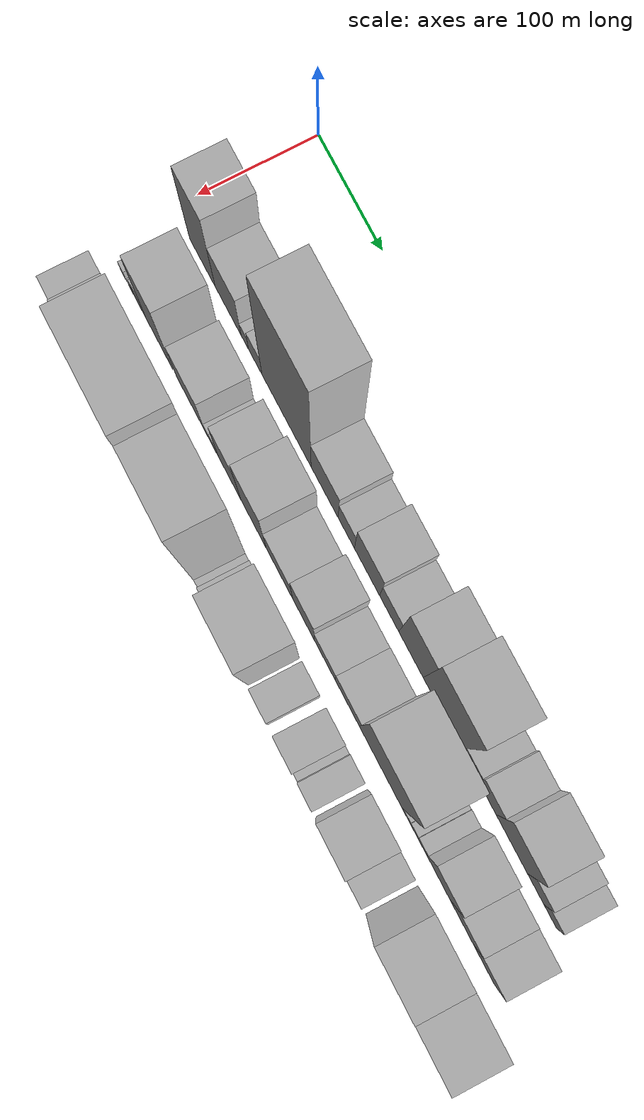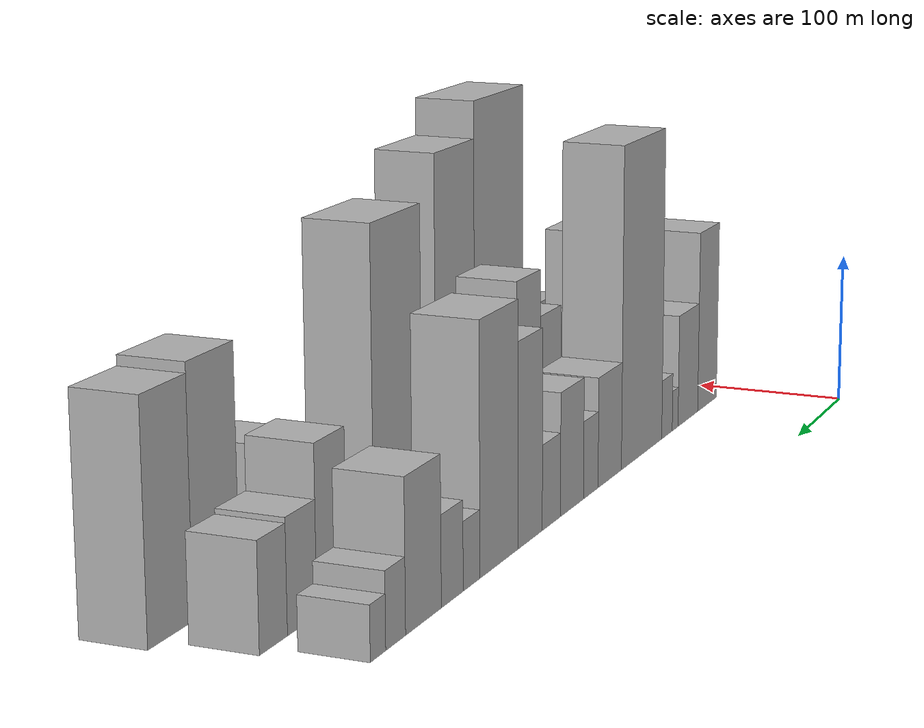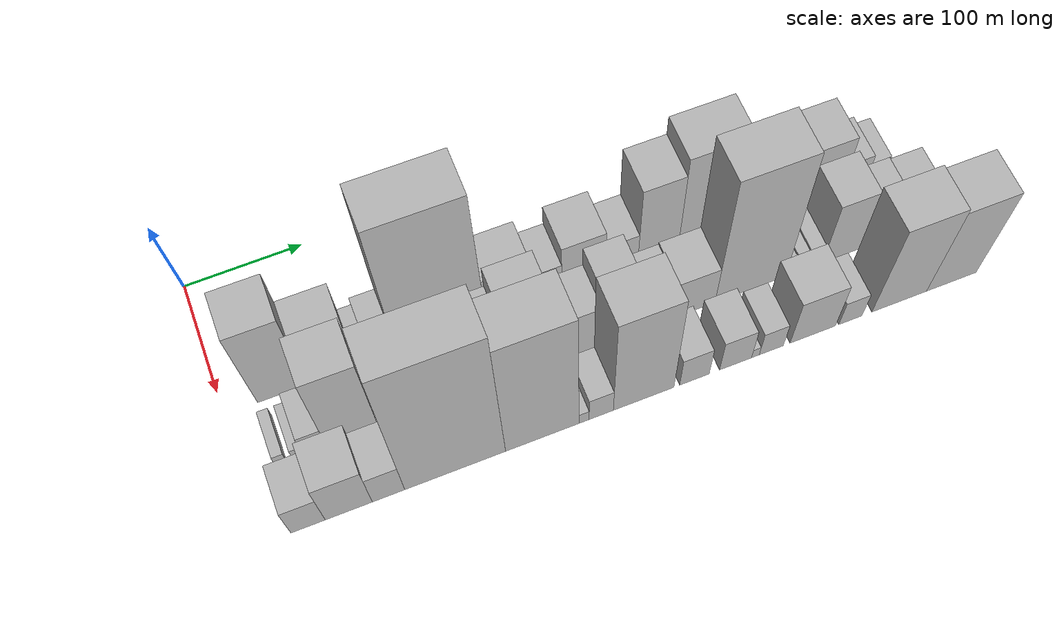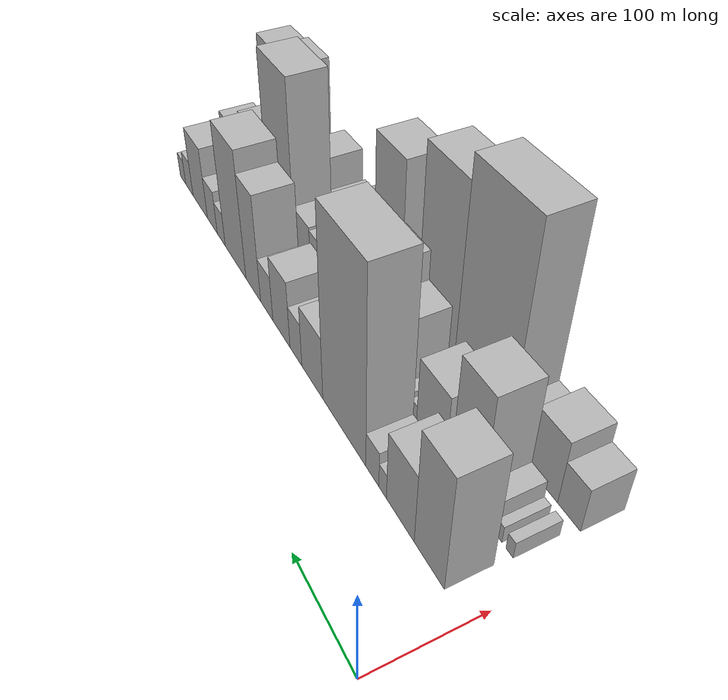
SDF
<sdf version="1.6">
 <world name="default">
  <model name="building_17">
   <static>1</static>
   <pose>100.0000 47.7928 0 0.000000 0.000000 0.000000</pose>
   <link name="link">
    <pose>0 0 61.50 0 0 0</pose>
    <collision name="collision"><geometry><box><size>40.0000 40.9139 123.0000</size></box></geometry></collision>
    <visual name="visual">
     <cast_shadows>0</cast_shadows>
     <geometry><box><size>40.0000 40.9139 123.0000</size></box></geometry>
     <material>
      <script>
       <uri>model://HANNAS_wall/materials/scripts</uri>
       <uri>model://HANNAS_wall/materials/textures</uri>
       <name>vrc/HANNAS_wall</name>
      </script>
     </material>
    </visual>
   </link>
  </model>
  <model name="building_18">
   <static>1</static>
   <pose>100.0000 88.7634 0 0.000000 0.000000 0.000000</pose>
   <link name="link">
    <pose>0 0 37.50 0 0 0</pose>
    <collision name="collision"><geometry><box><size>40.0000 41.0273 75.0000</size></box></geometry></collision>
    <visual name="visual">
     <cast_shadows>0</cast_shadows>
     <geometry><box><size>40.0000 41.0273 75.0000</size></box></geometry>
     <material>
      <script>
       <uri>model://HANNAS_wall/materials/scripts</uri>
       <uri>model://HANNAS_wall/materials/textures</uri>
       <name>vrc/HANNAS_wall</name>
      </script>
     </material>
    </visual>
   </link>
  </model>
  <model name="building_19">
   <static>1</static>
   <pose>100.0000 115.1914 0 0.000000 0.000000 0.000000</pose>
   <link name="link">
    <pose>0 0 13.50 0 0 0</pose>
    <collision name="collision"><geometry><box><size>40.0000 11.8286 27.0000</size></box></geometry></collision>
    <visual name="visual">
     <cast_shadows>0</cast_shadows>
     <geometry><box><size>40.0000 11.8286 27.0000</size></box></geometry>
     <material>
      <script>
       <uri>model://HANNAS_wall/materials/scripts</uri>
       <uri>model://HANNAS_wall/materials/textures</uri>
       <name>vrc/HANNAS_wall</name>
      </script>
     </material>
    </visual>
   </link>
  </model>
  <model name="building_20">
   <static>1</static>
   <pose>100.0000 131.5545 0 0.000000 0.000000 0.000000</pose>
   <link name="link">
    <pose>0 0 19.50 0 0 0</pose>
    <collision name="collision"><geometry><box><size>40.0000 20.8976 39.0000</size></box></geometry></collision>
    <visual name="visual">
     <cast_shadows>0</cast_shadows>
     <geometry><box><size>40.0000 20.8976 39.0000</size></box></geometry>
     <material>
      <script>
       <uri>model://HANNAS_wall/materials/scripts</uri>
       <uri>model://HANNAS_wall/materials/textures</uri>
       <name>vrc/HANNAS_wall</name>
      </script>
     </material>
    </visual>
   </link>
  </model>
  <model name="building_21">
   <static>1</static>
   <pose>100.0000 180.0972 0 0.000000 0.000000 0.000000</pose>
   <link name="link">
    <pose>0 0 102.00 0 0 0</pose>
    <collision name="collision"><geometry><box><size>40.0000 76.1879 204.0000</size></box></geometry></collision>
    <visual name="visual">
     <cast_shadows>0</cast_shadows>
     <geometry><box><size>40.0000 76.1879 204.0000</size></box></geometry>
     <material>
      <script>
       <uri>model://HANNAS_wall/materials/scripts</uri>
       <uri>model://HANNAS_wall/materials/textures</uri>
       <name>vrc/HANNAS_wall</name>
      </script>
     </material>
    </visual>
   </link>
  </model>
  <model name="building_22">
   <static>1</static>
   <pose>100.0000 238.7869 0 0.000000 0.000000 0.000000</pose>
   <link name="link">
    <pose>0 0 34.50 0 0 0</pose>
    <collision name="collision"><geometry><box><size>40.0000 41.1914 69.0000</size></box></geometry></collision>
    <visual name="visual">
     <cast_shadows>0</cast_shadows>
     <geometry><box><size>40.0000 41.1914 69.0000</size></box></geometry>
     <material>
      <script>
       <uri>model://HANNAS_wall/materials/scripts</uri>
       <uri>model://HANNAS_wall/materials/textures</uri>
       <name>vrc/HANNAS_wall</name>
      </script>
     </material>
    </visual>
   </link>
  </model>
  <model name="building_23">
   <static>1</static>
   <pose>100.0000 271.7643 0 0.000000 0.000000 0.000000</pose>
   <link name="link">
    <pose>0 0 24.00 0 0 0</pose>
    <collision name="collision"><geometry><box><size>40.0000 24.7636 48.0000</size></box></geometry></collision>
    <visual name="visual">
     <cast_shadows>0</cast_shadows>
     <geometry><box><size>40.0000 24.7636 48.0000</size></box></geometry>
     <material>
      <script>
       <uri>model://HANNAS_wall/materials/scripts</uri>
       <uri>model://HANNAS_wall/materials/textures</uri>
       <name>vrc/HANNAS_wall</name>
      </script>
     </material>
    </visual>
   </link>
  </model>
  <model name="building_24">
   <static>1</static>
   <pose>100.0000 303.0075 0 0.000000 0.000000 0.000000</pose>
   <link name="link">
    <pose>0 0 37.50 0 0 0</pose>
    <collision name="collision"><geometry><box><size>40.0000 37.7227 75.0000</size></box></geometry></collision>
    <visual name="visual">
     <cast_shadows>0</cast_shadows>
     <geometry><box><size>40.0000 37.7227 75.0000</size></box></geometry>
     <material>
      <script>
       <uri>model://HANNAS_wall/materials/scripts</uri>
       <uri>model://HANNAS_wall/materials/textures</uri>
       <name>vrc/HANNAS_wall</name>
      </script>
     </material>
    </visual>
   </link>
  </model>
  <model name="building_25">
   <static>1</static>
   <pose>100.0000 336.1396 0 0.000000 0.000000 0.000000</pose>
   <link name="link">
    <pose>0 0 25.50 0 0 0</pose>
    <collision name="collision"><geometry><box><size>40.0000 28.5414 51.0000</size></box></geometry></collision>
    <visual name="visual">
     <cast_shadows>0</cast_shadows>
     <geometry><box><size>40.0000 28.5414 51.0000</size></box></geometry>
     <material>
      <script>
       <uri>model://HANNAS_wall/materials/scripts</uri>
       <uri>model://HANNAS_wall/materials/textures</uri>
       <name>vrc/HANNAS_wall</name>
      </script>
     </material>
    </visual>
   </link>
  </model>
  <model name="building_26">
   <static>1</static>
   <pose>100.0000 368.4329 0 0.000000 0.000000 0.000000</pose>
   <link name="link">
    <pose>0 0 60.00 0 0 0</pose>
    <collision name="collision"><geometry><box><size>40.0000 36.0453 120.0000</size></box></geometry></collision>
    <visual name="visual">
     <cast_shadows>0</cast_shadows>
     <geometry><box><size>40.0000 36.0453 120.0000</size></box></geometry>
     <material>
      <script>
       <uri>model://HANNAS_wall/materials/scripts</uri>
       <uri>model://HANNAS_wall/materials/textures</uri>
       <name>vrc/HANNAS_wall</name>
      </script>
     </material>
    </visual>
   </link>
  </model>
  <model name="building_27">
   <static>1</static>
   <pose>100.0000 413.7367 0 0.000000 0.000000 0.000000</pose>
   <link name="link">
    <pose>0 0 72.00 0 0 0</pose>
    <collision name="collision"><geometry><box><size>40.0000 54.5623 144.0000</size></box></geometry></collision>
    <visual name="visual">
     <cast_shadows>0</cast_shadows>
     <geometry><box><size>40.0000 54.5623 144.0000</size></box></geometry>
     <material>
      <script>
       <uri>model://HANNAS_wall/materials/scripts</uri>
       <uri>model://HANNAS_wall/materials/textures</uri>
       <name>vrc/HANNAS_wall</name>
      </script>
     </material>
    </visual>
   </link>
  </model>
  <model name="building_28">
   <static>1</static>
   <pose>100.0000 452.2882 0 0.000000 0.000000 0.000000</pose>
   <link name="link">
    <pose>0 0 19.50 0 0 0</pose>
    <collision name="collision"><geometry><box><size>40.0000 22.5407 39.0000</size></box></geometry></collision>
    <visual name="visual">
     <cast_shadows>0</cast_shadows>
     <geometry><box><size>40.0000 22.5407 39.0000</size></box></geometry>
     <material>
      <script>
       <uri>model://HANNAS_wall/materials/scripts</uri>
       <uri>model://HANNAS_wall/materials/textures</uri>
       <name>vrc/HANNAS_wall</name>
      </script>
     </material>
    </visual>
   </link>
  </model>
  <model name="building_29">
   <static>1</static>
   <pose>100.0000 477.8087 0 0.000000 0.000000 0.000000</pose>
   <link name="link">
    <pose>0 0 25.50 0 0 0</pose>
    <collision name="collision"><geometry><box><size>40.0000 28.5004 51.0000</size></box></geometry></collision>
    <visual name="visual">
     <cast_shadows>0</cast_shadows>
     <geometry><box><size>40.0000 28.5004 51.0000</size></box></geometry>
     <material>
      <script>
       <uri>model://HANNAS_wall/materials/scripts</uri>
       <uri>model://HANNAS_wall/materials/textures</uri>
       <name>vrc/HANNAS_wall</name>
      </script>
     </material>
    </visual>
   </link>
  </model>
  <model name="building_30">
   <static>1</static>
   <pose>100.0000 514.2186 0 0.000000 0.000000 0.000000</pose>
   <link name="link">
    <pose>0 0 42.00 0 0 0</pose>
    <collision name="collision"><geometry><box><size>40.0000 44.3194 84.0000</size></box></geometry></collision>
    <visual name="visual">
     <cast_shadows>0</cast_shadows>
     <geometry><box><size>40.0000 44.3194 84.0000</size></box></geometry>
     <material>
      <script>
       <uri>model://HANNAS_wall/materials/scripts</uri>
       <uri>model://HANNAS_wall/materials/textures</uri>
       <name>vrc/HANNAS_wall</name>
      </script>
     </material>
    </visual>
   </link>
  </model>
  <model name="building_31">
   <static>1</static>
   <pose>100.0000 548.1095 0 0.000000 0.000000 0.000000</pose>
   <link name="link">
    <pose>0 0 21.00 0 0 0</pose>
    <collision name="collision"><geometry><box><size>40.0000 23.4623 42.0000</size></box></geometry></collision>
    <visual name="visual">
     <cast_shadows>0</cast_shadows>
     <geometry><box><size>40.0000 23.4623 42.0000</size></box></geometry>
     <material>
      <script>
       <uri>model://HANNAS_wall/materials/scripts</uri>
       <uri>model://HANNAS_wall/materials/textures</uri>
       <name>vrc/HANNAS_wall</name>
      </script>
     </material>
    </visual>
   </link>
  </model>
  <model name="building_32">
   <static>1</static>
   <pose>100.0000 568.7242 0 0.000000 0.000000 0.000000</pose>
   <link name="link">
    <pose>0 0 15.00 0 0 0</pose>
    <collision name="collision"><geometry><box><size>40.0000 17.7671 30.0000</size></box></geometry></collision>
    <visual name="visual">
     <cast_shadows>0</cast_shadows>
     <geometry><box><size>40.0000 17.7671 30.0000</size></box></geometry>
     <material>
      <script>
       <uri>model://HANNAS_wall/materials/scripts</uri>
       <uri>model://HANNAS_wall/materials/textures</uri>
       <name>vrc/HANNAS_wall</name>
      </script>
     </material>
    </visual>
   </link>
  </model>
  <model name="building_54">
   <static>1</static>
   <pose>155.0000 30.0182 0 0.000000 0.000000 0.000000</pose>
   <link name="link">
    <pose>0 0 9.00 0 0 0</pose>
    <collision name="collision"><geometry><box><size>40.0000 8.9610 18.0000</size></box></geometry></collision>
    <visual name="visual">
     <cast_shadows>0</cast_shadows>
     <geometry><box><size>40.0000 8.9610 18.0000</size></box></geometry>
     <material>
      <script>
       <uri>model://HANNAS_wall/materials/scripts</uri>
       <uri>model://HANNAS_wall/materials/textures</uri>
       <name>vrc/HANNAS_wall</name>
      </script>
     </material>
    </visual>
   </link>
  </model>
  <model name="building_55">
   <static>1</static>
   <pose>155.0000 43.6101 0 0.000000 0.000000 0.000000</pose>
   <link name="link">
    <pose>0 0 9.00 0 0 0</pose>
    <collision name="collision"><geometry><box><size>40.0000 8.2228 18.0000</size></box></geometry></collision>
    <visual name="visual">
     <cast_shadows>0</cast_shadows>
     <geometry><box><size>40.0000 8.2228 18.0000</size></box></geometry>
     <material>
      <script>
       <uri>model://HANNAS_wall/materials/scripts</uri>
       <uri>model://HANNAS_wall/materials/textures</uri>
       <name>vrc/HANNAS_wall</name>
      </script>
     </material>
    </visual>
   </link>
  </model>
  <model name="building_56">
   <static>1</static>
   <pose>155.0000 57.2296 0 0.000000 0.000000 0.000000</pose>
   <link name="link">
    <pose>0 0 18.00 0 0 0</pose>
    <collision name="collision"><geometry><box><size>40.0000 19.0161 36.0000</size></box></geometry></collision>
    <visual name="visual">
     <cast_shadows>0</cast_shadows>
     <geometry><box><size>40.0000 19.0161 36.0000</size></box></geometry>
     <material>
      <script>
       <uri>model://HANNAS_wall/materials/scripts</uri>
       <uri>model://HANNAS_wall/materials/textures</uri>
       <name>vrc/HANNAS_wall</name>
      </script>
     </material>
    </visual>
   </link>
  </model>
  <model name="building_57">
   <static>1</static>
   <pose>155.0000 87.8246 0 0.000000 0.000000 0.000000</pose>
   <link name="link">
    <pose>0 0 63.00 0 0 0</pose>
    <collision name="collision"><geometry><box><size>40.0000 42.1740 126.0000</size></box></geometry></collision>
    <visual name="visual">
     <cast_shadows>0</cast_shadows>
     <geometry><box><size>40.0000 42.1740 126.0000</size></box></geometry>
     <material>
      <script>
       <uri>model://HANNAS_wall/materials/scripts</uri>
       <uri>model://HANNAS_wall/materials/textures</uri>
       <name>vrc/HANNAS_wall</name>
      </script>
     </material>
    </visual>
   </link>
  </model>
  <model name="building_58">
   <static>1</static>
   <pose>155.0000 138.0495 0 0.000000 0.000000 0.000000</pose>
   <link name="link">
    <pose>0 0 37.50 0 0 0</pose>
    <collision name="collision"><geometry><box><size>40.0000 44.2757 75.0000</size></box></geometry></collision>
    <visual name="visual">
     <cast_shadows>0</cast_shadows>
     <geometry><box><size>40.0000 44.2757 75.0000</size></box></geometry>
     <material>
      <script>
       <uri>model://HANNAS_wall/materials/scripts</uri>
       <uri>model://HANNAS_wall/materials/textures</uri>
       <name>vrc/HANNAS_wall</name>
      </script>
     </material>
    </visual>
   </link>
  </model>
  <model name="building_59">
   <static>1</static>
   <pose>155.0000 164.9444 0 0.000000 0.000000 0.000000</pose>
   <link name="link">
    <pose>0 0 10.50 0 0 0</pose>
    <collision name="collision"><geometry><box><size>40.0000 9.5140 21.0000</size></box></geometry></collision>
    <visual name="visual">
     <cast_shadows>0</cast_shadows>
     <geometry><box><size>40.0000 9.5140 21.0000</size></box></geometry>
     <material>
      <script>
       <uri>model://HANNAS_wall/materials/scripts</uri>
       <uri>model://HANNAS_wall/materials/textures</uri>
       <name>vrc/HANNAS_wall</name>
      </script>
     </material>
    </visual>
   </link>
  </model>
  <model name="building_60">
   <static>1</static>
   <pose>155.0000 175.7145 0 0.000000 0.000000 0.000000</pose>
   <link name="link">
    <pose>0 0 13.50 0 0 0</pose>
    <collision name="collision"><geometry><box><size>40.0000 12.0264 27.0000</size></box></geometry></collision>
    <visual name="visual">
     <cast_shadows>0</cast_shadows>
     <geometry><box><size>40.0000 12.0264 27.0000</size></box></geometry>
     <material>
      <script>
       <uri>model://HANNAS_wall/materials/scripts</uri>
       <uri>model://HANNAS_wall/materials/textures</uri>
       <name>vrc/HANNAS_wall</name>
      </script>
     </material>
    </visual>
   </link>
  </model>
  <model name="building_61">
   <static>1</static>
   <pose>155.0000 199.2698 0 0.000000 0.000000 0.000000</pose>
   <link name="link">
    <pose>0 0 46.50 0 0 0</pose>
    <collision name="collision"><geometry><box><size>40.0000 35.0842 93.0000</size></box></geometry></collision>
    <visual name="visual">
     <cast_shadows>0</cast_shadows>
     <geometry><box><size>40.0000 35.0842 93.0000</size></box></geometry>
     <material>
      <script>
       <uri>model://HANNAS_wall/materials/scripts</uri>
       <uri>model://HANNAS_wall/materials/textures</uri>
       <name>vrc/HANNAS_wall</name>
      </script>
     </material>
    </visual>
   </link>
  </model>
  <model name="building_62">
   <static>1</static>
   <pose>155.0000 236.4280 0 0.000000 0.000000 0.000000</pose>
   <link name="link">
    <pose>0 0 61.50 0 0 0</pose>
    <collision name="collision"><geometry><box><size>40.0000 39.2322 123.0000</size></box></geometry></collision>
    <visual name="visual">
     <cast_shadows>0</cast_shadows>
     <geometry><box><size>40.0000 39.2322 123.0000</size></box></geometry>
     <material>
      <script>
       <uri>model://HANNAS_wall/materials/scripts</uri>
       <uri>model://HANNAS_wall/materials/textures</uri>
       <name>vrc/HANNAS_wall</name>
      </script>
     </material>
    </visual>
   </link>
  </model>
  <model name="building_63">
   <static>1</static>
   <pose>155.0000 275.9085 0 0.000000 0.000000 0.000000</pose>
   <link name="link">
    <pose>0 0 34.50 0 0 0</pose>
    <collision name="collision"><geometry><box><size>40.0000 39.7288 69.0000</size></box></geometry></collision>
    <visual name="visual">
     <cast_shadows>0</cast_shadows>
     <geometry><box><size>40.0000 39.7288 69.0000</size></box></geometry>
     <material>
      <script>
       <uri>model://HANNAS_wall/materials/scripts</uri>
       <uri>model://HANNAS_wall/materials/textures</uri>
       <name>vrc/HANNAS_wall</name>
      </script>
     </material>
    </visual>
   </link>
  </model>
  <model name="building_64">
   <static>1</static>
   <pose>155.0000 312.1380 0 0.000000 0.000000 0.000000</pose>
   <link name="link">
    <pose>0 0 48.00 0 0 0</pose>
    <collision name="collision"><geometry><box><size>40.0000 32.7303 96.0000</size></box></geometry></collision>
    <visual name="visual">
     <cast_shadows>0</cast_shadows>
     <geometry><box><size>40.0000 32.7303 96.0000</size></box></geometry>
     <material>
      <script>
       <uri>model://HANNAS_wall/materials/scripts</uri>
       <uri>model://HANNAS_wall/materials/textures</uri>
       <name>vrc/HANNAS_wall</name>
      </script>
     </material>
    </visual>
   </link>
  </model>
  <model name="building_65">
   <static>1</static>
   <pose>155.0000 344.0195 0 0.000000 0.000000 0.000000</pose>
   <link name="link">
    <pose>0 0 28.50 0 0 0</pose>
    <collision name="collision"><geometry><box><size>40.0000 31.0325 57.0000</size></box></geometry></collision>
    <visual name="visual">
     <cast_shadows>0</cast_shadows>
     <geometry><box><size>40.0000 31.0325 57.0000</size></box></geometry>
     <material>
      <script>
       <uri>model://HANNAS_wall/materials/scripts</uri>
       <uri>model://HANNAS_wall/materials/textures</uri>
       <name>vrc/HANNAS_wall</name>
      </script>
     </material>
    </visual>
   </link>
  </model>
  <model name="building_66">
   <static>1</static>
   <pose>155.0000 377.3986 0 0.000000 0.000000 0.000000</pose>
   <link name="link">
    <pose>0 0 30.00 0 0 0</pose>
    <collision name="collision"><geometry><box><size>40.0000 35.7258 60.0000</size></box></geometry></collision>
    <visual name="visual">
     <cast_shadows>0</cast_shadows>
     <geometry><box><size>40.0000 35.7258 60.0000</size></box></geometry>
     <material>
      <script>
       <uri>model://HANNAS_wall/materials/scripts</uri>
       <uri>model://HANNAS_wall/materials/textures</uri>
       <name>vrc/HANNAS_wall</name>
      </script>
     </material>
    </visual>
   </link>
  </model>
  <model name="building_67">
   <static>1</static>
   <pose>155.0000 426.7809 0 0.000000 0.000000 0.000000</pose>
   <link name="link">
    <pose>0 0 97.50 0 0 0</pose>
    <collision name="collision"><geometry><box><size>40.0000 63.0388 195.0000</size></box></geometry></collision>
    <visual name="visual">
     <cast_shadows>0</cast_shadows>
     <geometry><box><size>40.0000 63.0388 195.0000</size></box></geometry>
     <material>
      <script>
       <uri>model://HANNAS_wall/materials/scripts</uri>
       <uri>model://HANNAS_wall/materials/textures</uri>
       <name>vrc/HANNAS_wall</name>
      </script>
     </material>
    </visual>
   </link>
  </model>
  <model name="building_68">
   <static>1</static>
   <pose>155.0000 463.3087 0 0.000000 0.000000 0.000000</pose>
   <link name="link">
    <pose>0 0 10.50 0 0 0</pose>
    <collision name="collision"><geometry><box><size>40.0000 10.0167 21.0000</size></box></geometry></collision>
    <visual name="visual">
     <cast_shadows>0</cast_shadows>
     <geometry><box><size>40.0000 10.0167 21.0000</size></box></geometry>
     <material>
      <script>
       <uri>model://HANNAS_wall/materials/scripts</uri>
       <uri>model://HANNAS_wall/materials/textures</uri>
       <name>vrc/HANNAS_wall</name>
      </script>
     </material>
    </visual>
   </link>
  </model>
  <model name="building_69">
   <static>1</static>
   <pose>155.0000 473.5835 0 0.000000 0.000000 0.000000</pose>
   <link name="link">
    <pose>0 0 12.00 0 0 0</pose>
    <collision name="collision"><geometry><box><size>40.0000 10.5329 24.0000</size></box></geometry></collision>
    <visual name="visual">
     <cast_shadows>0</cast_shadows>
     <geometry><box><size>40.0000 10.5329 24.0000</size></box></geometry>
     <material>
      <script>
       <uri>model://HANNAS_wall/materials/scripts</uri>
       <uri>model://HANNAS_wall/materials/textures</uri>
       <name>vrc/HANNAS_wall</name>
      </script>
     </material>
    </visual>
   </link>
  </model>
  <model name="building_70">
   <static>1</static>
   <pose>155.0000 485.5032 0 0.000000 0.000000 0.000000</pose>
   <link name="link">
    <pose>0 0 13.50 0 0 0</pose>
    <collision name="collision"><geometry><box><size>40.0000 13.3063 27.0000</size></box></geometry></collision>
    <visual name="visual">
     <cast_shadows>0</cast_shadows>
     <geometry><box><size>40.0000 13.3063 27.0000</size></box></geometry>
     <material>
      <script>
       <uri>model://HANNAS_wall/materials/scripts</uri>
       <uri>model://HANNAS_wall/materials/textures</uri>
       <name>vrc/HANNAS_wall</name>
      </script>
     </material>
    </visual>
   </link>
  </model>
  <model name="building_71">
   <static>1</static>
   <pose>155.0000 509.6154 0 0.000000 0.000000 0.000000</pose>
   <link name="link">
    <pose>0 0 46.50 0 0 0</pose>
    <collision name="collision"><geometry><box><size>40.0000 34.9181 93.0000</size></box></geometry></collision>
    <visual name="visual">
     <cast_shadows>0</cast_shadows>
     <geometry><box><size>40.0000 34.9181 93.0000</size></box></geometry>
     <material>
      <script>
       <uri>model://HANNAS_wall/materials/scripts</uri>
       <uri>model://HANNAS_wall/materials/textures</uri>
       <name>vrc/HANNAS_wall</name>
      </script>
     </material>
    </visual>
   </link>
  </model>
  <model name="building_72">
   <static>1</static>
   <pose>155.0000 543.4794 0 0.000000 0.000000 0.000000</pose>
   <link name="link">
    <pose>0 0 31.50 0 0 0</pose>
    <collision name="collision"><geometry><box><size>40.0000 32.8101 63.0000</size></box></geometry></collision>
    <visual name="visual">
     <cast_shadows>0</cast_shadows>
     <geometry><box><size>40.0000 32.8101 63.0000</size></box></geometry>
     <material>
      <script>
       <uri>model://HANNAS_wall/materials/scripts</uri>
       <uri>model://HANNAS_wall/materials/textures</uri>
       <name>vrc/HANNAS_wall</name>
      </script>
     </material>
    </visual>
   </link>
  </model>
  <model name="building_73">
   <static>1</static>
   <pose>155.0000 574.9026 0 0.000000 0.000000 0.000000</pose>
   <link name="link">
    <pose>0 0 30.00 0 0 0</pose>
    <collision name="collision"><geometry><box><size>40.0000 30.0363 60.0000</size></box></geometry></collision>
    <visual name="visual">
     <cast_shadows>0</cast_shadows>
     <geometry><box><size>40.0000 30.0363 60.0000</size></box></geometry>
     <material>
      <script>
       <uri>model://HANNAS_wall/materials/scripts</uri>
       <uri>model://HANNAS_wall/materials/textures</uri>
       <name>vrc/HANNAS_wall</name>
      </script>
     </material>
    </visual>
   </link>
  </model>
  <model name="building_89">
   <static>1</static>
   <pose>210.0000 34.6594 0 0.000000 0.000000 0.000000</pose>
   <link name="link">
    <pose>0 0 24.00 0 0 0</pose>
    <collision name="collision"><geometry><box><size>40.0000 26.9854 48.0000</size></box></geometry></collision>
    <visual name="visual">
     <cast_shadows>0</cast_shadows>
     <geometry><box><size>40.0000 26.9854 48.0000</size></box></geometry>
     <material>
      <script>
       <uri>model://HANNAS_wall/materials/scripts</uri>
       <uri>model://HANNAS_wall/materials/textures</uri>
       <name>vrc/HANNAS_wall</name>
      </script>
     </material>
    </visual>
   </link>
  </model>
  <model name="building_90">
   <static>1</static>
   <pose>210.0000 66.8832 0 0.000000 0.000000 0.000000</pose>
   <link name="link">
    <pose>0 0 34.50 0 0 0</pose>
    <collision name="collision"><geometry><box><size>40.0000 37.4624 69.0000</size></box></geometry></collision>
    <visual name="visual">
     <cast_shadows>0</cast_shadows>
     <geometry><box><size>40.0000 37.4624 69.0000</size></box></geometry>
     <material>
      <script>
       <uri>model://HANNAS_wall/materials/scripts</uri>
       <uri>model://HANNAS_wall/materials/textures</uri>
       <name>vrc/HANNAS_wall</name>
      </script>
     </material>
    </visual>
   </link>
  </model>
  <model name="building_91">
   <static>1</static>
   <pose>210.0000 98.5190 0 0.000000 0.000000 0.000000</pose>
   <link name="link">
    <pose>0 0 25.50 0 0 0</pose>
    <collision name="collision"><geometry><box><size>40.0000 25.8091 51.0000</size></box></geometry></collision>
    <visual name="visual">
     <cast_shadows>0</cast_shadows>
     <geometry><box><size>40.0000 25.8091 51.0000</size></box></geometry>
     <material>
      <script>
       <uri>model://HANNAS_wall/materials/scripts</uri>
       <uri>model://HANNAS_wall/materials/textures</uri>
       <name>vrc/HANNAS_wall</name>
      </script>
     </material>
    </visual>
   </link>
  </model>
  <model name="building_92">
   <static>1</static>
   <pose>210.0000 152.4693 0 0.000000 0.000000 0.000000</pose>
   <link name="link">
    <pose>0 0 111.00 0 0 0</pose>
    <collision name="collision"><geometry><box><size>40.0000 82.0914 222.0000</size></box></geometry></collision>
    <visual name="visual">
     <cast_shadows>0</cast_shadows>
     <geometry><box><size>40.0000 82.0914 222.0000</size></box></geometry>
     <material>
      <script>
       <uri>model://HANNAS_wall/materials/scripts</uri>
       <uri>model://HANNAS_wall/materials/textures</uri>
       <name>vrc/HANNAS_wall</name>
      </script>
     </material>
    </visual>
   </link>
  </model>
  <model name="building_93">
   <static>1</static>
   <pose>210.0000 223.9887 0 0.000000 0.000000 0.000000</pose>
   <link name="link">
    <pose>0 0 99.00 0 0 0</pose>
    <collision name="collision"><geometry><box><size>40.0000 60.9475 198.0000</size></box></geometry></collision>
    <visual name="visual">
     <cast_shadows>0</cast_shadows>
     <geometry><box><size>40.0000 60.9475 198.0000</size></box></geometry>
     <material>
      <script>
       <uri>model://HANNAS_wall/materials/scripts</uri>
       <uri>model://HANNAS_wall/materials/textures</uri>
       <name>vrc/HANNAS_wall</name>
      </script>
     </material>
    </visual>
   </link>
  </model>
  <model name="building_94">
   <static>1</static>
   <pose>210.0000 258.7062 0 0.000000 0.000000 0.000000</pose>
   <link name="link">
    <pose>0 0 9.00 0 0 0</pose>
    <collision name="collision"><geometry><box><size>40.0000 8.4874 18.0000</size></box></geometry></collision>
    <visual name="visual">
     <cast_shadows>0</cast_shadows>
     <geometry><box><size>40.0000 8.4874 18.0000</size></box></geometry>
     <material>
      <script>
       <uri>model://HANNAS_wall/materials/scripts</uri>
       <uri>model://HANNAS_wall/materials/textures</uri>
       <name>vrc/HANNAS_wall</name>
      </script>
     </material>
    </visual>
   </link>
  </model>
  <model name="building_95">
   <static>1</static>
   <pose>210.0000 273.1592 0 0.000000 0.000000 0.000000</pose>
   <link name="link">
    <pose>0 0 19.50 0 0 0</pose>
    <collision name="collision"><geometry><box><size>40.0000 20.4185 39.0000</size></box></geometry></collision>
    <visual name="visual">
     <cast_shadows>0</cast_shadows>
     <geometry><box><size>40.0000 20.4185 39.0000</size></box></geometry>
     <material>
      <script>
       <uri>model://HANNAS_wall/materials/scripts</uri>
       <uri>model://HANNAS_wall/materials/textures</uri>
       <name>vrc/HANNAS_wall</name>
      </script>
     </material>
    </visual>
   </link>
  </model>
  <model name="building_96">
   <static>1</static>
   <pose>210.0000 309.1661 0 0.000000 0.000000 0.000000</pose>
   <link name="link">
    <pose>0 0 81.00 0 0 0</pose>
    <collision name="collision"><geometry><box><size>40.0000 51.5953 162.0000</size></box></geometry></collision>
    <visual name="visual">
     <cast_shadows>0</cast_shadows>
     <geometry><box><size>40.0000 51.5953 162.0000</size></box></geometry>
     <material>
      <script>
       <uri>model://HANNAS_wall/materials/scripts</uri>
       <uri>model://HANNAS_wall/materials/textures</uri>
       <name>vrc/HANNAS_wall</name>
      </script>
     </material>
    </visual>
   </link>
  </model>
  <model name="building_97">
   <static>1</static>
   <pose>210.0000 352.7057 0 0.000000 0.000000 0.000000</pose>
   <link name="link">
    <pose>0 0 24.00 0 0 0</pose>
    <collision name="collision"><geometry><box><size>40.0000 25.4838 48.0000</size></box></geometry></collision>
    <visual name="visual">
     <cast_shadows>0</cast_shadows>
     <geometry><box><size>40.0000 25.4838 48.0000</size></box></geometry>
     <material>
      <script>
       <uri>model://HANNAS_wall/materials/scripts</uri>
       <uri>model://HANNAS_wall/materials/textures</uri>
       <name>vrc/HANNAS_wall</name>
      </script>
     </material>
    </visual>
   </link>
  </model>
  <model name="building_98">
   <static>1</static>
   <pose>210.0000 388.3634 0 0.000000 0.000000 0.000000</pose>
   <link name="link">
    <pose>0 0 25.50 0 0 0</pose>
    <collision name="collision"><geometry><box><size>40.0000 27.8316 51.0000</size></box></geometry></collision>
    <visual name="visual">
     <cast_shadows>0</cast_shadows>
     <geometry><box><size>40.0000 27.8316 51.0000</size></box></geometry>
     <material>
      <script>
       <uri>model://HANNAS_wall/materials/scripts</uri>
       <uri>model://HANNAS_wall/materials/textures</uri>
       <name>vrc/HANNAS_wall</name>
      </script>
     </material>
    </visual>
   </link>
  </model>
  <model name="building_99">
   <static>1</static>
   <pose>210.0000 405.6714 0 0.000000 0.000000 0.000000</pose>
   <link name="link">
    <pose>0 0 7.50 0 0 0</pose>
    <collision name="collision"><geometry><box><size>40.0000 6.7845 15.0000</size></box></geometry></collision>
    <visual name="visual">
     <cast_shadows>0</cast_shadows>
     <geometry><box><size>40.0000 6.7845 15.0000</size></box></geometry>
     <material>
      <script>
       <uri>model://HANNAS_wall/materials/scripts</uri>
       <uri>model://HANNAS_wall/materials/textures</uri>
       <name>vrc/HANNAS_wall</name>
      </script>
     </material>
    </visual>
   </link>
  </model>
  <model name="building_100">
   <static>1</static>
   <pose>210.0000 419.6622 0 0.000000 0.000000 0.000000</pose>
   <link name="link">
    <pose>0 0 19.50 0 0 0</pose>
    <collision name="collision"><geometry><box><size>40.0000 21.1971 39.0000</size></box></geometry></collision>
    <visual name="visual">
     <cast_shadows>0</cast_shadows>
     <geometry><box><size>40.0000 21.1971 39.0000</size></box></geometry>
     <material>
      <script>
       <uri>model://HANNAS_wall/materials/scripts</uri>
       <uri>model://HANNAS_wall/materials/textures</uri>
       <name>vrc/HANNAS_wall</name>
      </script>
     </material>
    </visual>
   </link>
  </model>
  <model name="building_101">
   <static>1</static>
   <pose>210.0000 456.3841 0 0.000000 0.000000 0.000000</pose>
   <link name="link">
    <pose>0 0 36.00 0 0 0</pose>
    <collision name="collision"><geometry><box><size>40.0000 40.2467 72.0000</size></box></geometry></collision>
    <visual name="visual">
     <cast_shadows>0</cast_shadows>
     <geometry><box><size>40.0000 40.2467 72.0000</size></box></geometry>
     <material>
      <script>
       <uri>model://HANNAS_wall/materials/scripts</uri>
       <uri>model://HANNAS_wall/materials/textures</uri>
       <name>vrc/HANNAS_wall</name>
      </script>
     </material>
    </visual>
   </link>
  </model>
  <model name="building_102">
   <static>1</static>
   <pose>210.0000 489.9363 0 0.000000 0.000000 0.000000</pose>
   <link name="link">
    <pose>0 0 19.50 0 0 0</pose>
    <collision name="collision"><geometry><box><size>40.0000 20.8575 39.0000</size></box></geometry></collision>
    <visual name="visual">
     <cast_shadows>0</cast_shadows>
     <geometry><box><size>40.0000 20.8575 39.0000</size></box></geometry>
     <material>
      <script>
       <uri>model://HANNAS_wall/materials/scripts</uri>
       <uri>model://HANNAS_wall/materials/textures</uri>
       <name>vrc/HANNAS_wall</name>
      </script>
     </material>
    </visual>
   </link>
  </model>
  <model name="building_103">
   <static>1</static>
   <pose>210.0000 534.1861 0 0.000000 0.000000 0.000000</pose>
   <link name="link">
    <pose>0 0 69.00 0 0 0</pose>
    <collision name="collision"><geometry><box><size>40.0000 49.6421 138.0000</size></box></geometry></collision>
    <visual name="visual">
     <cast_shadows>0</cast_shadows>
     <geometry><box><size>40.0000 49.6421 138.0000</size></box></geometry>
     <material>
      <script>
       <uri>model://HANNAS_wall/materials/scripts</uri>
       <uri>model://HANNAS_wall/materials/textures</uri>
       <name>vrc/HANNAS_wall</name>
      </script>
     </material>
    </visual>
   </link>
  </model>
  <model name="building_104">
   <static>1</static>
   <pose>210.0000 581.8148 0 0.000000 0.000000 0.000000</pose>
   <link name="link">
    <pose>0 0 66.00 0 0 0</pose>
    <collision name="collision"><geometry><box><size>40.0000 45.6153 132.0000</size></box></geometry></collision>
    <visual name="visual">
     <cast_shadows>0</cast_shadows>
     <geometry><box><size>40.0000 45.6153 132.0000</size></box></geometry>
     <material>
      <script>
       <uri>model://HANNAS_wall/materials/scripts</uri>
       <uri>model://HANNAS_wall/materials/textures</uri>
       <name>vrc/HANNAS_wall</name>
      </script>
     </material>
    </visual>
   </link>
  </model>
 </world>
</sdf>
